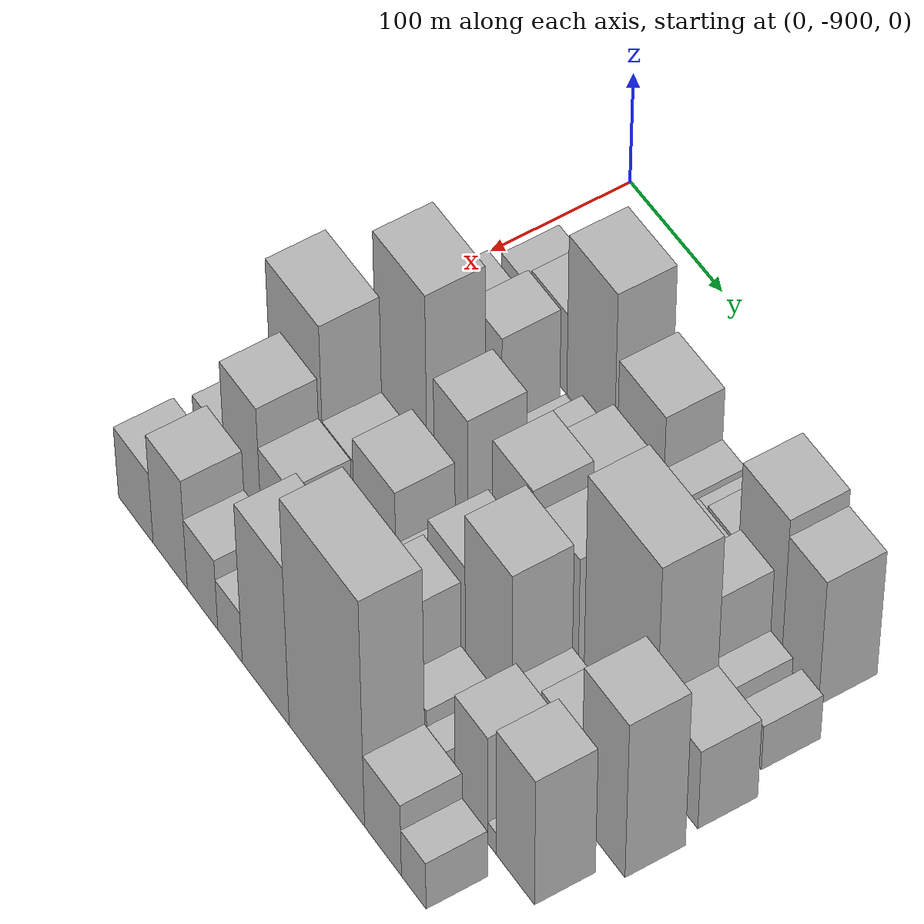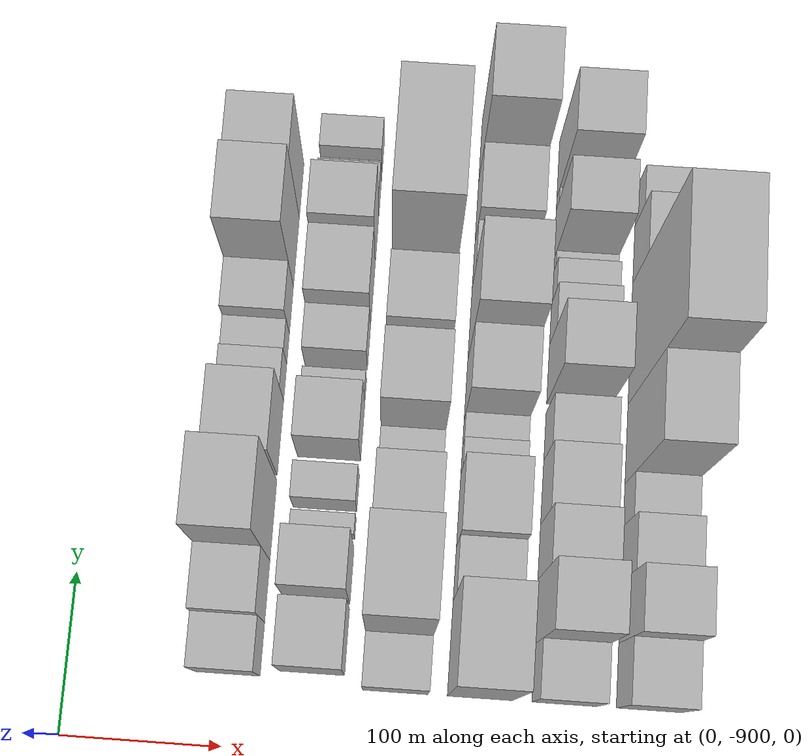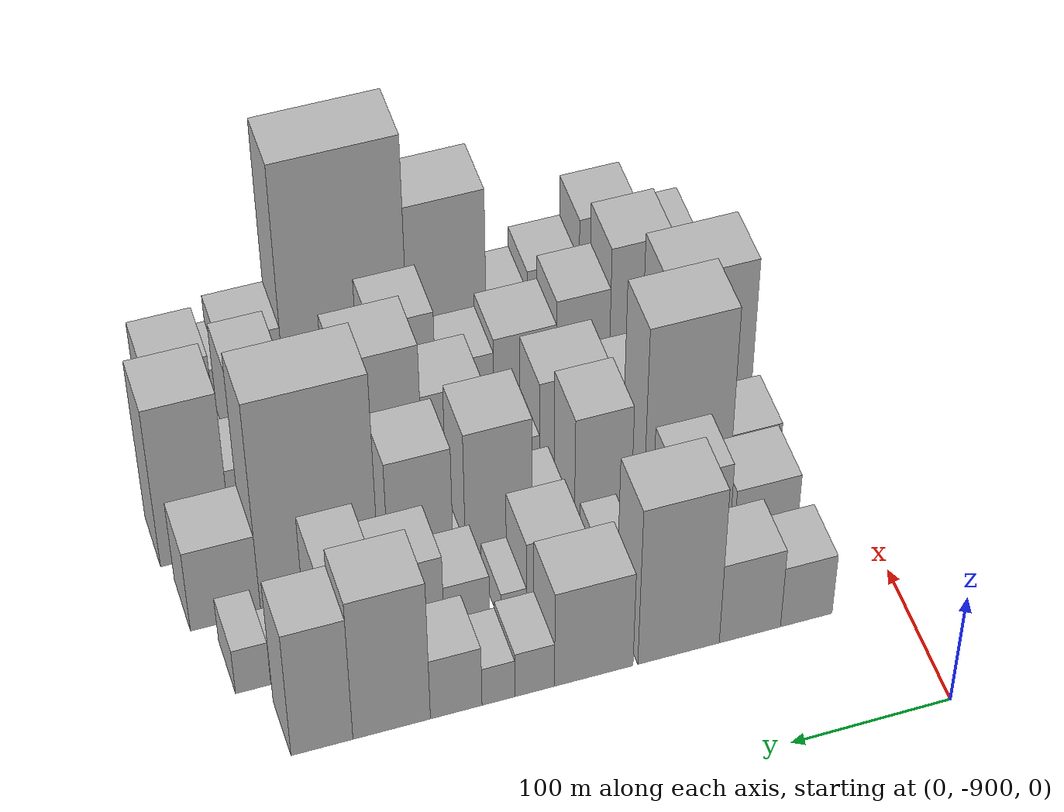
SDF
<sdf version="1.6">
 <world name="default">
  <model name="building_1">
   <static>1</static>
   <pose>100.0000 -839.5826 0 0.000000 0.000000 0.000000</pose>
   <link name="link">
    <pose>0 0 28.50 0 0 0</pose>
    <collision name="collision"><geometry><box><size>40.0000 32.8347 57.0000</size></box></geometry></collision>
    <visual name="visual">
     <cast_shadows>0</cast_shadows>
     <geometry><box><size>40.0000 32.8347 57.0000</size></box></geometry>
     <material>
      <script>
       <uri>model://HANNAS_wall/materials/scripts</uri>
       <uri>model://HANNAS_wall/materials/textures</uri>
       <name>vrc/HANNAS_wall</name>
      </script>
     </material>
    </visual>
   </link>
  </model>
  <model name="building_2">
   <static>1</static>
   <pose>100.0000 -803.8127 0 0.000000 0.000000 0.000000</pose>
   <link name="link">
    <pose>0 0 37.50 0 0 0</pose>
    <collision name="collision"><geometry><box><size>40.0000 38.7050 75.0000</size></box></geometry></collision>
    <visual name="visual">
     <cast_shadows>0</cast_shadows>
     <geometry><box><size>40.0000 38.7050 75.0000</size></box></geometry>
     <material>
      <script>
       <uri>model://HANNAS_wall/materials/scripts</uri>
       <uri>model://HANNAS_wall/materials/textures</uri>
       <name>vrc/HANNAS_wall</name>
      </script>
     </material>
    </visual>
   </link>
  </model>
  <model name="building_3">
   <static>1</static>
   <pose>100.0000 -758.9218 0 0.000000 0.000000 0.000000</pose>
   <link name="link">
    <pose>0 0 73.50 0 0 0</pose>
    <collision name="collision"><geometry><box><size>40.0000 51.0769 147.0000</size></box></geometry></collision>
    <visual name="visual">
     <cast_shadows>0</cast_shadows>
     <geometry><box><size>40.0000 51.0769 147.0000</size></box></geometry>
     <material>
      <script>
       <uri>model://HANNAS_wall/materials/scripts</uri>
       <uri>model://HANNAS_wall/materials/textures</uri>
       <name>vrc/HANNAS_wall</name>
      </script>
     </material>
    </visual>
   </link>
  </model>
  <model name="building_4">
   <static>1</static>
   <pose>100.0000 -706.0290 0 0.000000 0.000000 0.000000</pose>
   <link name="link">
    <pose>0 0 45.00 0 0 0</pose>
    <collision name="collision"><geometry><box><size>40.0000 48.7086 90.0000</size></box></geometry></collision>
    <visual name="visual">
     <cast_shadows>0</cast_shadows>
     <geometry><box><size>40.0000 48.7086 90.0000</size></box></geometry>
     <material>
      <script>
       <uri>model://HANNAS_wall/materials/scripts</uri>
       <uri>model://HANNAS_wall/materials/textures</uri>
       <name>vrc/HANNAS_wall</name>
      </script>
     </material>
    </visual>
   </link>
  </model>
  <model name="building_5">
   <static>1</static>
   <pose>100.0000 -669.4987 0 0.000000 0.000000 0.000000</pose>
   <link name="link">
    <pose>0 0 21.00 0 0 0</pose>
    <collision name="collision"><geometry><box><size>40.0000 24.3519 42.0000</size></box></geometry></collision>
    <visual name="visual">
     <cast_shadows>0</cast_shadows>
     <geometry><box><size>40.0000 24.3519 42.0000</size></box></geometry>
     <material>
      <script>
       <uri>model://HANNAS_wall/materials/scripts</uri>
       <uri>model://HANNAS_wall/materials/textures</uri>
       <name>vrc/HANNAS_wall</name>
      </script>
     </material>
    </visual>
   </link>
  </model>
  <model name="building_6">
   <static>1</static>
   <pose>100.0000 -647.2073 0 0.000000 0.000000 0.000000</pose>
   <link name="link">
    <pose>0 0 18.00 0 0 0</pose>
    <collision name="collision"><geometry><box><size>40.0000 20.2310 36.0000</size></box></geometry></collision>
    <visual name="visual">
     <cast_shadows>0</cast_shadows>
     <geometry><box><size>40.0000 20.2310 36.0000</size></box></geometry>
     <material>
      <script>
       <uri>model://HANNAS_wall/materials/scripts</uri>
       <uri>model://HANNAS_wall/materials/textures</uri>
       <name>vrc/HANNAS_wall</name>
      </script>
     </material>
    </visual>
   </link>
  </model>
  <model name="building_7">
   <static>1</static>
   <pose>100.0000 -621.3473 0 0.000000 0.000000 0.000000</pose>
   <link name="link">
    <pose>0 0 28.50 0 0 0</pose>
    <collision name="collision"><geometry><box><size>40.0000 31.4890 57.0000</size></box></geometry></collision>
    <visual name="visual">
     <cast_shadows>0</cast_shadows>
     <geometry><box><size>40.0000 31.4890 57.0000</size></box></geometry>
     <material>
      <script>
       <uri>model://HANNAS_wall/materials/scripts</uri>
       <uri>model://HANNAS_wall/materials/textures</uri>
       <name>vrc/HANNAS_wall</name>
      </script>
     </material>
    </visual>
   </link>
  </model>
  <model name="building_8">
   <static>1</static>
   <pose>100.0000 -582.1317 0 0.000000 0.000000 0.000000</pose>
   <link name="link">
    <pose>0 0 66.00 0 0 0</pose>
    <collision name="collision"><geometry><box><size>40.0000 46.9421 132.0000</size></box></geometry></collision>
    <visual name="visual">
     <cast_shadows>0</cast_shadows>
     <geometry><box><size>40.0000 46.9421 132.0000</size></box></geometry>
     <material>
      <script>
       <uri>model://HANNAS_wall/materials/scripts</uri>
       <uri>model://HANNAS_wall/materials/textures</uri>
       <name>vrc/HANNAS_wall</name>
      </script>
     </material>
    </visual>
   </link>
  </model>
  <model name="building_9">
   <static>1</static>
   <pose>100.0000 -540.0095 0 0.000000 0.000000 0.000000</pose>
   <link name="link">
    <pose>0 0 58.50 0 0 0</pose>
    <collision name="collision"><geometry><box><size>40.0000 37.3023 117.0000</size></box></geometry></collision>
    <visual name="visual">
     <cast_shadows>0</cast_shadows>
     <geometry><box><size>40.0000 37.3023 117.0000</size></box></geometry>
     <material>
      <script>
       <uri>model://HANNAS_wall/materials/scripts</uri>
       <uri>model://HANNAS_wall/materials/textures</uri>
       <name>vrc/HANNAS_wall</name>
      </script>
     </material>
    </visual>
   </link>
  </model>
  <model name="building_49">
   <static>1</static>
   <pose>152.0000 -831.6447 0 0.000000 0.000000 0.000000</pose>
   <link name="link">
    <pose>0 0 36.00 0 0 0</pose>
    <collision name="collision"><geometry><box><size>40.0000 40.7107 72.0000</size></box></geometry></collision>
    <visual name="visual">
     <cast_shadows>0</cast_shadows>
     <geometry><box><size>40.0000 40.7107 72.0000</size></box></geometry>
     <material>
      <script>
       <uri>model://HANNAS_wall/materials/scripts</uri>
       <uri>model://HANNAS_wall/materials/textures</uri>
       <name>vrc/HANNAS_wall</name>
      </script>
     </material>
    </visual>
   </link>
  </model>
  <model name="building_50">
   <static>1</static>
   <pose>152.0000 -790.9299 0 0.000000 0.000000 0.000000</pose>
   <link name="link">
    <pose>0 0 49.50 0 0 0</pose>
    <collision name="collision"><geometry><box><size>40.0000 34.7189 99.0000</size></box></geometry></collision>
    <visual name="visual">
     <cast_shadows>0</cast_shadows>
     <geometry><box><size>40.0000 34.7189 99.0000</size></box></geometry>
     <material>
      <script>
       <uri>model://HANNAS_wall/materials/scripts</uri>
       <uri>model://HANNAS_wall/materials/textures</uri>
       <name>vrc/HANNAS_wall</name>
      </script>
     </material>
    </visual>
   </link>
  </model>
  <model name="building_51">
   <static>1</static>
   <pose>152.0000 -761.2111 0 0.000000 0.000000 0.000000</pose>
   <link name="link">
    <pose>0 0 13.50 0 0 0</pose>
    <collision name="collision"><geometry><box><size>40.0000 12.7188 27.0000</size></box></geometry></collision>
    <visual name="visual">
     <cast_shadows>0</cast_shadows>
     <geometry><box><size>40.0000 12.7188 27.0000</size></box></geometry>
     <material>
      <script>
       <uri>model://HANNAS_wall/materials/scripts</uri>
       <uri>model://HANNAS_wall/materials/textures</uri>
       <name>vrc/HANNAS_wall</name>
      </script>
     </material>
    </visual>
   </link>
  </model>
  <model name="building_52">
   <static>1</static>
   <pose>152.0000 -738.5863 0 0.000000 0.000000 0.000000</pose>
   <link name="link">
    <pose>0 0 22.50 0 0 0</pose>
    <collision name="collision"><geometry><box><size>40.0000 22.5308 45.0000</size></box></geometry></collision>
    <visual name="visual">
     <cast_shadows>0</cast_shadows>
     <geometry><box><size>40.0000 22.5308 45.0000</size></box></geometry>
     <material>
      <script>
       <uri>model://HANNAS_wall/materials/scripts</uri>
       <uri>model://HANNAS_wall/materials/textures</uri>
       <name>vrc/HANNAS_wall</name>
      </script>
     </material>
    </visual>
   </link>
  </model>
  <model name="building_53">
   <static>1</static>
   <pose>152.0000 -699.1443 0 0.000000 0.000000 0.000000</pose>
   <link name="link">
    <pose>0 0 36.00 0 0 0</pose>
    <collision name="collision"><geometry><box><size>40.0000 36.3531 72.0000</size></box></geometry></collision>
    <visual name="visual">
     <cast_shadows>0</cast_shadows>
     <geometry><box><size>40.0000 36.3531 72.0000</size></box></geometry>
     <material>
      <script>
       <uri>model://HANNAS_wall/materials/scripts</uri>
       <uri>model://HANNAS_wall/materials/textures</uri>
       <name>vrc/HANNAS_wall</name>
      </script>
     </material>
    </visual>
   </link>
  </model>
  <model name="building_54">
   <static>1</static>
   <pose>152.0000 -673.0068 0 0.000000 0.000000 0.000000</pose>
   <link name="link">
    <pose>0 0 15.00 0 0 0</pose>
    <collision name="collision"><geometry><box><size>40.0000 15.9220 30.0000</size></box></geometry></collision>
    <visual name="visual">
     <cast_shadows>0</cast_shadows>
     <geometry><box><size>40.0000 15.9220 30.0000</size></box></geometry>
     <material>
      <script>
       <uri>model://HANNAS_wall/materials/scripts</uri>
       <uri>model://HANNAS_wall/materials/textures</uri>
       <name>vrc/HANNAS_wall</name>
      </script>
     </material>
    </visual>
   </link>
  </model>
  <model name="building_55">
   <static>1</static>
   <pose>152.0000 -643.9043 0 0.000000 0.000000 0.000000</pose>
   <link name="link">
    <pose>0 0 25.50 0 0 0</pose>
    <collision name="collision"><geometry><box><size>40.0000 28.2830 51.0000</size></box></geometry></collision>
    <visual name="visual">
     <cast_shadows>0</cast_shadows>
     <geometry><box><size>40.0000 28.2830 51.0000</size></box></geometry>
     <material>
      <script>
       <uri>model://HANNAS_wall/materials/scripts</uri>
       <uri>model://HANNAS_wall/materials/textures</uri>
       <name>vrc/HANNAS_wall</name>
      </script>
     </material>
    </visual>
   </link>
  </model>
  <model name="building_56">
   <static>1</static>
   <pose>152.0000 -608.8419 0 0.000000 0.000000 0.000000</pose>
   <link name="link">
    <pose>0 0 40.50 0 0 0</pose>
    <collision name="collision"><geometry><box><size>40.0000 41.8420 81.0000</size></box></geometry></collision>
    <visual name="visual">
     <cast_shadows>0</cast_shadows>
     <geometry><box><size>40.0000 41.8420 81.0000</size></box></geometry>
     <material>
      <script>
       <uri>model://HANNAS_wall/materials/scripts</uri>
       <uri>model://HANNAS_wall/materials/textures</uri>
       <name>vrc/HANNAS_wall</name>
      </script>
     </material>
    </visual>
   </link>
  </model>
  <model name="building_57">
   <static>1</static>
   <pose>152.0000 -571.2216 0 0.000000 0.000000 0.000000</pose>
   <link name="link">
    <pose>0 0 49.50 0 0 0</pose>
    <collision name="collision"><geometry><box><size>40.0000 33.3986 99.0000</size></box></geometry></collision>
    <visual name="visual">
     <cast_shadows>0</cast_shadows>
     <geometry><box><size>40.0000 33.3986 99.0000</size></box></geometry>
     <material>
      <script>
       <uri>model://HANNAS_wall/materials/scripts</uri>
       <uri>model://HANNAS_wall/materials/textures</uri>
       <name>vrc/HANNAS_wall</name>
      </script>
     </material>
    </visual>
   </link>
  </model>
  <model name="building_58">
   <static>1</static>
   <pose>152.0000 -543.2752 0 0.000000 0.000000 0.000000</pose>
   <link name="link">
    <pose>0 0 21.00 0 0 0</pose>
    <collision name="collision"><geometry><box><size>40.0000 22.4943 42.0000</size></box></geometry></collision>
    <visual name="visual">
     <cast_shadows>0</cast_shadows>
     <geometry><box><size>40.0000 22.4943 42.0000</size></box></geometry>
     <material>
      <script>
       <uri>model://HANNAS_wall/materials/scripts</uri>
       <uri>model://HANNAS_wall/materials/textures</uri>
       <name>vrc/HANNAS_wall</name>
      </script>
     </material>
    </visual>
   </link>
  </model>
  <model name="building_59">
   <static>1</static>
   <pose>152.0000 -527.6275 0 0.000000 0.000000 0.000000</pose>
   <link name="link">
    <pose>0 0 10.50 0 0 0</pose>
    <collision name="collision"><geometry><box><size>40.0000 8.8011 21.0000</size></box></geometry></collision>
    <visual name="visual">
     <cast_shadows>0</cast_shadows>
     <geometry><box><size>40.0000 8.8011 21.0000</size></box></geometry>
     <material>
      <script>
       <uri>model://HANNAS_wall/materials/scripts</uri>
       <uri>model://HANNAS_wall/materials/textures</uri>
       <name>vrc/HANNAS_wall</name>
      </script>
     </material>
    </visual>
   </link>
  </model>
  <model name="building_60">
   <static>1</static>
   <pose>152.0000 -512.4964 0 0.000000 0.000000 0.000000</pose>
   <link name="link">
    <pose>0 0 21.00 0 0 0</pose>
    <collision name="collision"><geometry><box><size>40.0000 21.4612 42.0000</size></box></geometry></collision>
    <visual name="visual">
     <cast_shadows>0</cast_shadows>
     <geometry><box><size>40.0000 21.4612 42.0000</size></box></geometry>
     <material>
      <script>
       <uri>model://HANNAS_wall/materials/scripts</uri>
       <uri>model://HANNAS_wall/materials/textures</uri>
       <name>vrc/HANNAS_wall</name>
      </script>
     </material>
    </visual>
   </link>
  </model>
  <model name="building_101">
   <static>1</static>
   <pose>204.0000 -843.9155 0 0.000000 0.000000 0.000000</pose>
   <link name="link">
    <pose>0 0 28.50 0 0 0</pose>
    <collision name="collision"><geometry><box><size>40.0000 32.1689 57.0000</size></box></geometry></collision>
    <visual name="visual">
     <cast_shadows>0</cast_shadows>
     <geometry><box><size>40.0000 32.1689 57.0000</size></box></geometry>
     <material>
      <script>
       <uri>model://HANNAS_wall/materials/scripts</uri>
       <uri>model://HANNAS_wall/materials/textures</uri>
       <name>vrc/HANNAS_wall</name>
      </script>
     </material>
    </visual>
   </link>
  </model>
  <model name="building_102">
   <static>1</static>
   <pose>204.0000 -800.0457 0 0.000000 0.000000 0.000000</pose>
   <link name="link">
    <pose>0 0 87.00 0 0 0</pose>
    <collision name="collision"><geometry><box><size>40.0000 55.5708 174.0000</size></box></geometry></collision>
    <visual name="visual">
     <cast_shadows>0</cast_shadows>
     <geometry><box><size>40.0000 55.5708 174.0000</size></box></geometry>
     <material>
      <script>
       <uri>model://HANNAS_wall/materials/scripts</uri>
       <uri>model://HANNAS_wall/materials/textures</uri>
       <name>vrc/HANNAS_wall</name>
      </script>
     </material>
    </visual>
   </link>
  </model>
  <model name="building_103">
   <static>1</static>
   <pose>204.0000 -746.1005 0 0.000000 0.000000 0.000000</pose>
   <link name="link">
    <pose>0 0 54.00 0 0 0</pose>
    <collision name="collision"><geometry><box><size>40.0000 36.3195 108.0000</size></box></geometry></collision>
    <visual name="visual">
     <cast_shadows>0</cast_shadows>
     <geometry><box><size>40.0000 36.3195 108.0000</size></box></geometry>
     <material>
      <script>
       <uri>model://HANNAS_wall/materials/scripts</uri>
       <uri>model://HANNAS_wall/materials/textures</uri>
       <name>vrc/HANNAS_wall</name>
      </script>
     </material>
    </visual>
   </link>
  </model>
  <model name="building_104">
   <static>1</static>
   <pose>204.0000 -712.5826 0 0.000000 0.000000 0.000000</pose>
   <link name="link">
    <pose>0 0 19.50 0 0 0</pose>
    <collision name="collision"><geometry><box><size>40.0000 22.7163 39.0000</size></box></geometry></collision>
    <visual name="visual">
     <cast_shadows>0</cast_shadows>
     <geometry><box><size>40.0000 22.7163 39.0000</size></box></geometry>
     <material>
      <script>
       <uri>model://HANNAS_wall/materials/scripts</uri>
       <uri>model://HANNAS_wall/materials/textures</uri>
       <name>vrc/HANNAS_wall</name>
      </script>
     </material>
    </visual>
   </link>
  </model>
  <model name="building_105">
   <static>1</static>
   <pose>204.0000 -680.0476 0 0.000000 0.000000 0.000000</pose>
   <link name="link">
    <pose>0 0 60.00 0 0 0</pose>
    <collision name="collision"><geometry><box><size>40.0000 42.3537 120.0000</size></box></geometry></collision>
    <visual name="visual">
     <cast_shadows>0</cast_shadows>
     <geometry><box><size>40.0000 42.3537 120.0000</size></box></geometry>
     <material>
      <script>
       <uri>model://HANNAS_wall/materials/scripts</uri>
       <uri>model://HANNAS_wall/materials/textures</uri>
       <name>vrc/HANNAS_wall</name>
      </script>
     </material>
    </visual>
   </link>
  </model>
  <model name="building_106">
   <static>1</static>
   <pose>204.0000 -655.0511 0 0.000000 0.000000 0.000000</pose>
   <link name="link">
    <pose>0 0 9.00 0 0 0</pose>
    <collision name="collision"><geometry><box><size>40.0000 7.6394 18.0000</size></box></geometry></collision>
    <visual name="visual">
     <cast_shadows>0</cast_shadows>
     <geometry><box><size>40.0000 7.6394 18.0000</size></box></geometry>
     <material>
      <script>
       <uri>model://HANNAS_wall/materials/scripts</uri>
       <uri>model://HANNAS_wall/materials/textures</uri>
       <name>vrc/HANNAS_wall</name>
      </script>
     </material>
    </visual>
   </link>
  </model>
  <model name="building_107">
   <static>1</static>
   <pose>204.0000 -630.9782 0 0.000000 0.000000 0.000000</pose>
   <link name="link">
    <pose>0 0 55.50 0 0 0</pose>
    <collision name="collision"><geometry><box><size>40.0000 40.5064 111.0000</size></box></geometry></collision>
    <visual name="visual">
     <cast_shadows>0</cast_shadows>
     <geometry><box><size>40.0000 40.5064 111.0000</size></box></geometry>
     <material>
      <script>
       <uri>model://HANNAS_wall/materials/scripts</uri>
       <uri>model://HANNAS_wall/materials/textures</uri>
       <name>vrc/HANNAS_wall</name>
      </script>
     </material>
    </visual>
   </link>
  </model>
  <model name="building_108">
   <static>1</static>
   <pose>204.0000 -567.8685 0 0.000000 0.000000 0.000000</pose>
   <link name="link">
    <pose>0 0 97.50 0 0 0</pose>
    <collision name="collision"><geometry><box><size>40.0000 73.7130 195.0000</size></box></geometry></collision>
    <visual name="visual">
     <cast_shadows>0</cast_shadows>
     <geometry><box><size>40.0000 73.7130 195.0000</size></box></geometry>
     <material>
      <script>
       <uri>model://HANNAS_wall/materials/scripts</uri>
       <uri>model://HANNAS_wall/materials/textures</uri>
       <name>vrc/HANNAS_wall</name>
      </script>
     </material>
    </visual>
   </link>
  </model>
  <model name="building_109">
   <static>1</static>
   <pose>204.0000 -509.3145 0 0.000000 0.000000 0.000000</pose>
   <link name="link">
    <pose>0 0 37.50 0 0 0</pose>
    <collision name="collision"><geometry><box><size>40.0000 43.3950 75.0000</size></box></geometry></collision>
    <visual name="visual">
     <cast_shadows>0</cast_shadows>
     <geometry><box><size>40.0000 43.3950 75.0000</size></box></geometry>
     <material>
      <script>
       <uri>model://HANNAS_wall/materials/scripts</uri>
       <uri>model://HANNAS_wall/materials/textures</uri>
       <name>vrc/HANNAS_wall</name>
      </script>
     </material>
    </visual>
   </link>
  </model>
  <model name="building_154">
   <static>1</static>
   <pose>256.0000 -830.9233 0 0.000000 0.000000 0.000000</pose>
   <link name="link">
    <pose>0 0 75.00 0 0 0</pose>
    <collision name="collision"><geometry><box><size>40.0000 58.1534 150.0000</size></box></geometry></collision>
    <visual name="visual">
     <cast_shadows>0</cast_shadows>
     <geometry><box><size>40.0000 58.1534 150.0000</size></box></geometry>
     <material>
      <script>
       <uri>model://HANNAS_wall/materials/scripts</uri>
       <uri>model://HANNAS_wall/materials/textures</uri>
       <name>vrc/HANNAS_wall</name>
      </script>
     </material>
    </visual>
   </link>
  </model>
  <model name="building_155">
   <static>1</static>
   <pose>256.0000 -785.0221 0 0.000000 0.000000 0.000000</pose>
   <link name="link">
    <pose>0 0 31.50 0 0 0</pose>
    <collision name="collision"><geometry><box><size>40.0000 33.6490 63.0000</size></box></geometry></collision>
    <visual name="visual">
     <cast_shadows>0</cast_shadows>
     <geometry><box><size>40.0000 33.6490 63.0000</size></box></geometry>
     <material>
      <script>
       <uri>model://HANNAS_wall/materials/scripts</uri>
       <uri>model://HANNAS_wall/materials/textures</uri>
       <name>vrc/HANNAS_wall</name>
      </script>
     </material>
    </visual>
   </link>
  </model>
  <model name="building_156">
   <static>1</static>
   <pose>256.0000 -745.2883 0 0.000000 0.000000 0.000000</pose>
   <link name="link">
    <pose>0 0 42.00 0 0 0</pose>
    <collision name="collision"><geometry><box><size>40.0000 45.8186 84.0000</size></box></geometry></collision>
    <visual name="visual">
     <cast_shadows>0</cast_shadows>
     <geometry><box><size>40.0000 45.8186 84.0000</size></box></geometry>
     <material>
      <script>
       <uri>model://HANNAS_wall/materials/scripts</uri>
       <uri>model://HANNAS_wall/materials/textures</uri>
       <name>vrc/HANNAS_wall</name>
      </script>
     </material>
    </visual>
   </link>
  </model>
  <model name="building_157">
   <static>1</static>
   <pose>256.0000 -713.1857 0 0.000000 0.000000 0.000000</pose>
   <link name="link">
    <pose>0 0 18.00 0 0 0</pose>
    <collision name="collision"><geometry><box><size>40.0000 18.3867 36.0000</size></box></geometry></collision>
    <visual name="visual">
     <cast_shadows>0</cast_shadows>
     <geometry><box><size>40.0000 18.3867 36.0000</size></box></geometry>
     <material>
      <script>
       <uri>model://HANNAS_wall/materials/scripts</uri>
       <uri>model://HANNAS_wall/materials/textures</uri>
       <name>vrc/HANNAS_wall</name>
      </script>
     </material>
    </visual>
   </link>
  </model>
  <model name="building_158">
   <static>1</static>
   <pose>256.0000 -695.5342 0 0.000000 0.000000 0.000000</pose>
   <link name="link">
    <pose>0 0 15.00 0 0 0</pose>
    <collision name="collision"><geometry><box><size>40.0000 16.9162 30.0000</size></box></geometry></collision>
    <visual name="visual">
     <cast_shadows>0</cast_shadows>
     <geometry><box><size>40.0000 16.9162 30.0000</size></box></geometry>
     <material>
      <script>
       <uri>model://HANNAS_wall/materials/scripts</uri>
       <uri>model://HANNAS_wall/materials/textures</uri>
       <name>vrc/HANNAS_wall</name>
      </script>
     </material>
    </visual>
   </link>
  </model>
  <model name="building_159">
   <static>1</static>
   <pose>256.0000 -667.4558 0 0.000000 0.000000 0.000000</pose>
   <link name="link">
    <pose>0 0 49.50 0 0 0</pose>
    <collision name="collision"><geometry><box><size>40.0000 39.2407 99.0000</size></box></geometry></collision>
    <visual name="visual">
     <cast_shadows>0</cast_shadows>
     <geometry><box><size>40.0000 39.2407 99.0000</size></box></geometry>
     <material>
      <script>
       <uri>model://HANNAS_wall/materials/scripts</uri>
       <uri>model://HANNAS_wall/materials/textures</uri>
       <name>vrc/HANNAS_wall</name>
      </script>
     </material>
    </visual>
   </link>
  </model>
  <model name="building_160">
   <static>1</static>
   <pose>256.0000 -623.3529 0 0.000000 0.000000 0.000000</pose>
   <link name="link">
    <pose>0 0 73.50 0 0 0</pose>
    <collision name="collision"><geometry><box><size>40.0000 48.9651 147.0000</size></box></geometry></collision>
    <visual name="visual">
     <cast_shadows>0</cast_shadows>
     <geometry><box><size>40.0000 48.9651 147.0000</size></box></geometry>
     <material>
      <script>
       <uri>model://HANNAS_wall/materials/scripts</uri>
       <uri>model://HANNAS_wall/materials/textures</uri>
       <name>vrc/HANNAS_wall</name>
      </script>
     </material>
    </visual>
   </link>
  </model>
  <model name="building_161">
   <static>1</static>
   <pose>256.0000 -583.8645 0 0.000000 0.000000 0.000000</pose>
   <link name="link">
    <pose>0 0 25.50 0 0 0</pose>
    <collision name="collision"><geometry><box><size>40.0000 30.0115 51.0000</size></box></geometry></collision>
    <visual name="visual">
     <cast_shadows>0</cast_shadows>
     <geometry><box><size>40.0000 30.0115 51.0000</size></box></geometry>
     <material>
      <script>
       <uri>model://HANNAS_wall/materials/scripts</uri>
       <uri>model://HANNAS_wall/materials/textures</uri>
       <name>vrc/HANNAS_wall</name>
      </script>
     </material>
    </visual>
   </link>
  </model>
  <model name="building_162">
   <static>1</static>
   <pose>256.0000 -547.7988 0 0.000000 0.000000 0.000000</pose>
   <link name="link">
    <pose>0 0 37.50 0 0 0</pose>
    <collision name="collision"><geometry><box><size>40.0000 42.1199 75.0000</size></box></geometry></collision>
    <visual name="visual">
     <cast_shadows>0</cast_shadows>
     <geometry><box><size>40.0000 42.1199 75.0000</size></box></geometry>
     <material>
      <script>
       <uri>model://HANNAS_wall/materials/scripts</uri>
       <uri>model://HANNAS_wall/materials/textures</uri>
       <name>vrc/HANNAS_wall</name>
      </script>
     </material>
    </visual>
   </link>
  </model>
  <model name="building_163">
   <static>1</static>
   <pose>256.0000 -504.3911 0 0.000000 0.000000 0.000000</pose>
   <link name="link">
    <pose>0 0 73.50 0 0 0</pose>
    <collision name="collision"><geometry><box><size>40.0000 44.6955 147.0000</size></box></geometry></collision>
    <visual name="visual">
     <cast_shadows>0</cast_shadows>
     <geometry><box><size>40.0000 44.6955 147.0000</size></box></geometry>
     <material>
      <script>
       <uri>model://HANNAS_wall/materials/scripts</uri>
       <uri>model://HANNAS_wall/materials/textures</uri>
       <name>vrc/HANNAS_wall</name>
      </script>
     </material>
    </visual>
   </link>
  </model>
  <model name="building_201">
   <static>1</static>
   <pose>308.0000 -842.4354 0 0.000000 0.000000 0.000000</pose>
   <link name="link">
    <pose>0 0 30.00 0 0 0</pose>
    <collision name="collision"><geometry><box><size>40.0000 35.1292 60.0000</size></box></geometry></collision>
    <visual name="visual">
     <cast_shadows>0</cast_shadows>
     <geometry><box><size>40.0000 35.1292 60.0000</size></box></geometry>
     <material>
      <script>
       <uri>model://HANNAS_wall/materials/scripts</uri>
       <uri>model://HANNAS_wall/materials/textures</uri>
       <name>vrc/HANNAS_wall</name>
      </script>
     </material>
    </visual>
   </link>
  </model>
  <model name="building_202">
   <static>1</static>
   <pose>308.0000 -804.8808 0 0.000000 0.000000 0.000000</pose>
   <link name="link">
    <pose>0 0 64.50 0 0 0</pose>
    <collision name="collision"><geometry><box><size>40.0000 39.9800 129.0000</size></box></geometry></collision>
    <visual name="visual">
     <cast_shadows>0</cast_shadows>
     <geometry><box><size>40.0000 39.9800 129.0000</size></box></geometry>
     <material>
      <script>
       <uri>model://HANNAS_wall/materials/scripts</uri>
       <uri>model://HANNAS_wall/materials/textures</uri>
       <name>vrc/HANNAS_wall</name>
      </script>
     </material>
    </visual>
   </link>
  </model>
  <model name="building_203">
   <static>1</static>
   <pose>308.0000 -767.5042 0 0.000000 0.000000 0.000000</pose>
   <link name="link">
    <pose>0 0 46.50 0 0 0</pose>
    <collision name="collision"><geometry><box><size>40.0000 34.7732 93.0000</size></box></geometry></collision>
    <visual name="visual">
     <cast_shadows>0</cast_shadows>
     <geometry><box><size>40.0000 34.7732 93.0000</size></box></geometry>
     <material>
      <script>
       <uri>model://HANNAS_wall/materials/scripts</uri>
       <uri>model://HANNAS_wall/materials/textures</uri>
       <name>vrc/HANNAS_wall</name>
      </script>
     </material>
    </visual>
   </link>
  </model>
  <model name="building_204">
   <static>1</static>
   <pose>308.0000 -729.7178 0 0.000000 0.000000 0.000000</pose>
   <link name="link">
    <pose>0 0 36.00 0 0 0</pose>
    <collision name="collision"><geometry><box><size>40.0000 40.7994 72.0000</size></box></geometry></collision>
    <visual name="visual">
     <cast_shadows>0</cast_shadows>
     <geometry><box><size>40.0000 40.7994 72.0000</size></box></geometry>
     <material>
      <script>
       <uri>model://HANNAS_wall/materials/scripts</uri>
       <uri>model://HANNAS_wall/materials/textures</uri>
       <name>vrc/HANNAS_wall</name>
      </script>
     </material>
    </visual>
   </link>
  </model>
  <model name="building_205">
   <static>1</static>
   <pose>308.0000 -693.6685 0 0.000000 0.000000 0.000000</pose>
   <link name="link">
    <pose>0 0 30.00 0 0 0</pose>
    <collision name="collision"><geometry><box><size>40.0000 31.2993 60.0000</size></box></geometry></collision>
    <visual name="visual">
     <cast_shadows>0</cast_shadows>
     <geometry><box><size>40.0000 31.2993 60.0000</size></box></geometry>
     <material>
      <script>
       <uri>model://HANNAS_wall/materials/scripts</uri>
       <uri>model://HANNAS_wall/materials/textures</uri>
       <name>vrc/HANNAS_wall</name>
      </script>
     </material>
    </visual>
   </link>
  </model>
  <model name="building_206">
   <static>1</static>
   <pose>308.0000 -652.5995 0 0.000000 0.000000 0.000000</pose>
   <link name="link">
    <pose>0 0 55.50 0 0 0</pose>
    <collision name="collision"><geometry><box><size>40.0000 38.8387 111.0000</size></box></geometry></collision>
    <visual name="visual">
     <cast_shadows>0</cast_shadows>
     <geometry><box><size>40.0000 38.8387 111.0000</size></box></geometry>
     <material>
      <script>
       <uri>model://HANNAS_wall/materials/scripts</uri>
       <uri>model://HANNAS_wall/materials/textures</uri>
       <name>vrc/HANNAS_wall</name>
      </script>
     </material>
    </visual>
   </link>
  </model>
  <model name="building_207">
   <static>1</static>
   <pose>308.0000 -619.3905 0 0.000000 0.000000 0.000000</pose>
   <link name="link">
    <pose>0 0 25.50 0 0 0</pose>
    <collision name="collision"><geometry><box><size>40.0000 27.5792 51.0000</size></box></geometry></collision>
    <visual name="visual">
     <cast_shadows>0</cast_shadows>
     <geometry><box><size>40.0000 27.5792 51.0000</size></box></geometry>
     <material>
      <script>
       <uri>model://HANNAS_wall/materials/scripts</uri>
       <uri>model://HANNAS_wall/materials/textures</uri>
       <name>vrc/HANNAS_wall</name>
      </script>
     </material>
    </visual>
   </link>
  </model>
  <model name="building_208">
   <static>1</static>
   <pose>308.0000 -595.3991 0 0.000000 0.000000 0.000000</pose>
   <link name="link">
    <pose>0 0 18.00 0 0 0</pose>
    <collision name="collision"><geometry><box><size>40.0000 20.4036 36.0000</size></box></geometry></collision>
    <visual name="visual">
     <cast_shadows>0</cast_shadows>
     <geometry><box><size>40.0000 20.4036 36.0000</size></box></geometry>
     <material>
      <script>
       <uri>model://HANNAS_wall/materials/scripts</uri>
       <uri>model://HANNAS_wall/materials/textures</uri>
       <name>vrc/HANNAS_wall</name>
      </script>
     </material>
    </visual>
   </link>
  </model>
  <model name="building_209">
   <static>1</static>
   <pose>308.0000 -580.5688 0 0.000000 0.000000 0.000000</pose>
   <link name="link">
    <pose>0 0 10.50 0 0 0</pose>
    <collision name="collision"><geometry><box><size>40.0000 9.2571 21.0000</size></box></geometry></collision>
    <visual name="visual">
     <cast_shadows>0</cast_shadows>
     <geometry><box><size>40.0000 9.2571 21.0000</size></box></geometry>
     <material>
      <script>
       <uri>model://HANNAS_wall/materials/scripts</uri>
       <uri>model://HANNAS_wall/materials/textures</uri>
       <name>vrc/HANNAS_wall</name>
      </script>
     </material>
    </visual>
   </link>
  </model>
  <model name="building_210">
   <static>1</static>
   <pose>308.0000 -558.9604 0 0.000000 0.000000 0.000000</pose>
   <link name="link">
    <pose>0 0 51.00 0 0 0</pose>
    <collision name="collision"><geometry><box><size>40.0000 33.9597 102.0000</size></box></geometry></collision>
    <visual name="visual">
     <cast_shadows>0</cast_shadows>
     <geometry><box><size>40.0000 33.9597 102.0000</size></box></geometry>
     <material>
      <script>
       <uri>model://HANNAS_wall/materials/scripts</uri>
       <uri>model://HANNAS_wall/materials/textures</uri>
       <name>vrc/HANNAS_wall</name>
      </script>
     </material>
    </visual>
   </link>
  </model>
  <model name="building_211">
   <static>1</static>
   <pose>308.0000 -537.6158 0 0.000000 0.000000 0.000000</pose>
   <link name="link">
    <pose>0 0 10.50 0 0 0</pose>
    <collision name="collision"><geometry><box><size>40.0000 8.7296 21.0000</size></box></geometry></collision>
    <visual name="visual">
     <cast_shadows>0</cast_shadows>
     <geometry><box><size>40.0000 8.7296 21.0000</size></box></geometry>
     <material>
      <script>
       <uri>model://HANNAS_wall/materials/scripts</uri>
       <uri>model://HANNAS_wall/materials/textures</uri>
       <name>vrc/HANNAS_wall</name>
      </script>
     </material>
    </visual>
   </link>
  </model>
  <model name="building_212">
   <static>1</static>
   <pose>308.0000 -513.4669 0 0.000000 0.000000 0.000000</pose>
   <link name="link">
    <pose>0 0 60.00 0 0 0</pose>
    <collision name="collision"><geometry><box><size>40.0000 39.5682 120.0000</size></box></geometry></collision>
    <visual name="visual">
     <cast_shadows>0</cast_shadows>
     <geometry><box><size>40.0000 39.5682 120.0000</size></box></geometry>
     <material>
      <script>
       <uri>model://HANNAS_wall/materials/scripts</uri>
       <uri>model://HANNAS_wall/materials/textures</uri>
       <name>vrc/HANNAS_wall</name>
      </script>
     </material>
    </visual>
   </link>
  </model>
  <model name="building_250">
   <static>1</static>
   <pose>360.0000 -840.2731 0 0.000000 0.000000 0.000000</pose>
   <link name="link">
    <pose>0 0 33.00 0 0 0</pose>
    <collision name="collision"><geometry><box><size>40.0000 39.4538 66.0000</size></box></geometry></collision>
    <visual name="visual">
     <cast_shadows>0</cast_shadows>
     <geometry><box><size>40.0000 39.4538 66.0000</size></box></geometry>
     <material>
      <script>
       <uri>model://HANNAS_wall/materials/scripts</uri>
       <uri>model://HANNAS_wall/materials/textures</uri>
       <name>vrc/HANNAS_wall</name>
      </script>
     </material>
    </visual>
   </link>
  </model>
  <model name="building_251">
   <static>1</static>
   <pose>360.0000 -801.1819 0 0.000000 0.000000 0.000000</pose>
   <link name="link">
    <pose>0 0 51.00 0 0 0</pose>
    <collision name="collision"><geometry><box><size>40.0000 38.7287 102.0000</size></box></geometry></collision>
    <visual name="visual">
     <cast_shadows>0</cast_shadows>
     <geometry><box><size>40.0000 38.7287 102.0000</size></box></geometry>
     <material>
      <script>
       <uri>model://HANNAS_wall/materials/scripts</uri>
       <uri>model://HANNAS_wall/materials/textures</uri>
       <name>vrc/HANNAS_wall</name>
      </script>
     </material>
    </visual>
   </link>
  </model>
  <model name="building_252">
   <static>1</static>
   <pose>360.0000 -764.7546 0 0.000000 0.000000 0.000000</pose>
   <link name="link">
    <pose>0 0 33.00 0 0 0</pose>
    <collision name="collision"><geometry><box><size>40.0000 34.1258 66.0000</size></box></geometry></collision>
    <visual name="visual">
     <cast_shadows>0</cast_shadows>
     <geometry><box><size>40.0000 34.1258 66.0000</size></box></geometry>
     <material>
      <script>
       <uri>model://HANNAS_wall/materials/scripts</uri>
       <uri>model://HANNAS_wall/materials/textures</uri>
       <name>vrc/HANNAS_wall</name>
      </script>
     </material>
    </visual>
   </link>
  </model>
  <model name="building_253">
   <static>1</static>
   <pose>360.0000 -734.1073 0 0.000000 0.000000 0.000000</pose>
   <link name="link">
    <pose>0 0 24.00 0 0 0</pose>
    <collision name="collision"><geometry><box><size>40.0000 27.1687 48.0000</size></box></geometry></collision>
    <visual name="visual">
     <cast_shadows>0</cast_shadows>
     <geometry><box><size>40.0000 27.1687 48.0000</size></box></geometry>
     <material>
      <script>
       <uri>model://HANNAS_wall/materials/scripts</uri>
       <uri>model://HANNAS_wall/materials/textures</uri>
       <name>vrc/HANNAS_wall</name>
      </script>
     </material>
    </visual>
   </link>
  </model>
  <model name="building_254">
   <static>1</static>
   <pose>360.0000 -694.7790 0 0.000000 0.000000 0.000000</pose>
   <link name="link">
    <pose>0 0 75.00 0 0 0</pose>
    <collision name="collision"><geometry><box><size>40.0000 51.4879 150.0000</size></box></geometry></collision>
    <visual name="visual">
     <cast_shadows>0</cast_shadows>
     <geometry><box><size>40.0000 51.4879 150.0000</size></box></geometry>
     <material>
      <script>
       <uri>model://HANNAS_wall/materials/scripts</uri>
       <uri>model://HANNAS_wall/materials/textures</uri>
       <name>vrc/HANNAS_wall</name>
      </script>
     </material>
    </visual>
   </link>
  </model>
  <model name="building_255">
   <static>1</static>
   <pose>360.0000 -628.5528 0 0.000000 0.000000 0.000000</pose>
   <link name="link">
    <pose>0 0 106.50 0 0 0</pose>
    <collision name="collision"><geometry><box><size>40.0000 80.9645 213.0000</size></box></geometry></collision>
    <visual name="visual">
     <cast_shadows>0</cast_shadows>
     <geometry><box><size>40.0000 80.9645 213.0000</size></box></geometry>
     <material>
      <script>
       <uri>model://HANNAS_wall/materials/scripts</uri>
       <uri>model://HANNAS_wall/materials/textures</uri>
       <name>vrc/HANNAS_wall</name>
      </script>
     </material>
    </visual>
   </link>
  </model>
  <model name="building_256">
   <static>1</static>
   <pose>360.0000 -568.6067 0 0.000000 0.000000 0.000000</pose>
   <link name="link">
    <pose>0 0 34.50 0 0 0</pose>
    <collision name="collision"><geometry><box><size>40.0000 38.9278 69.0000</size></box></geometry></collision>
    <visual name="visual">
     <cast_shadows>0</cast_shadows>
     <geometry><box><size>40.0000 38.9278 69.0000</size></box></geometry>
     <material>
      <script>
       <uri>model://HANNAS_wall/materials/scripts</uri>
       <uri>model://HANNAS_wall/materials/textures</uri>
       <name>vrc/HANNAS_wall</name>
      </script>
     </material>
    </visual>
   </link>
  </model>
  <model name="building_257">
   <static>1</static>
   <pose>360.0000 -536.2098 0 0.000000 0.000000 0.000000</pose>
   <link name="link">
    <pose>0 0 22.50 0 0 0</pose>
    <collision name="collision"><geometry><box><size>40.0000 25.8659 45.0000</size></box></geometry></collision>
    <visual name="visual">
     <cast_shadows>0</cast_shadows>
     <geometry><box><size>40.0000 25.8659 45.0000</size></box></geometry>
     <material>
      <script>
       <uri>model://HANNAS_wall/materials/scripts</uri>
       <uri>model://HANNAS_wall/materials/textures</uri>
       <name>vrc/HANNAS_wall</name>
      </script>
     </material>
    </visual>
   </link>
  </model>
 </world>
</sdf>
